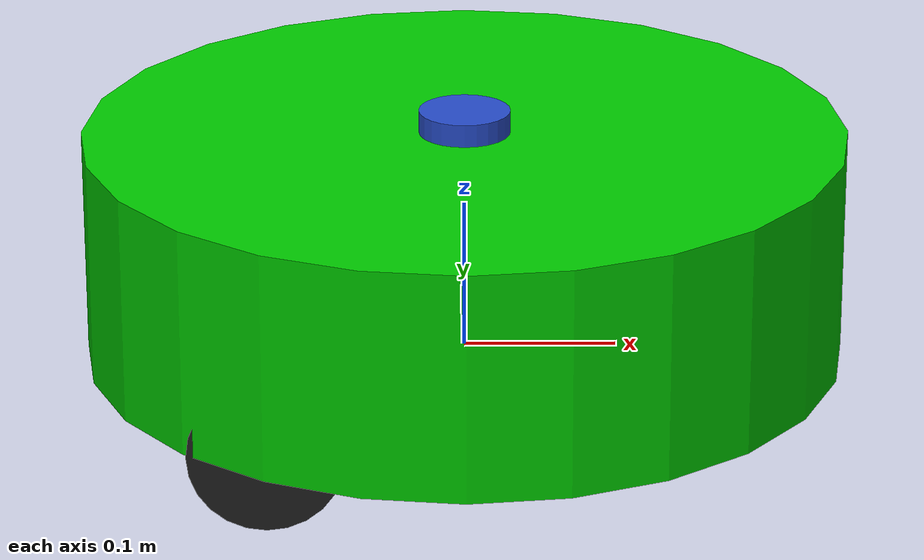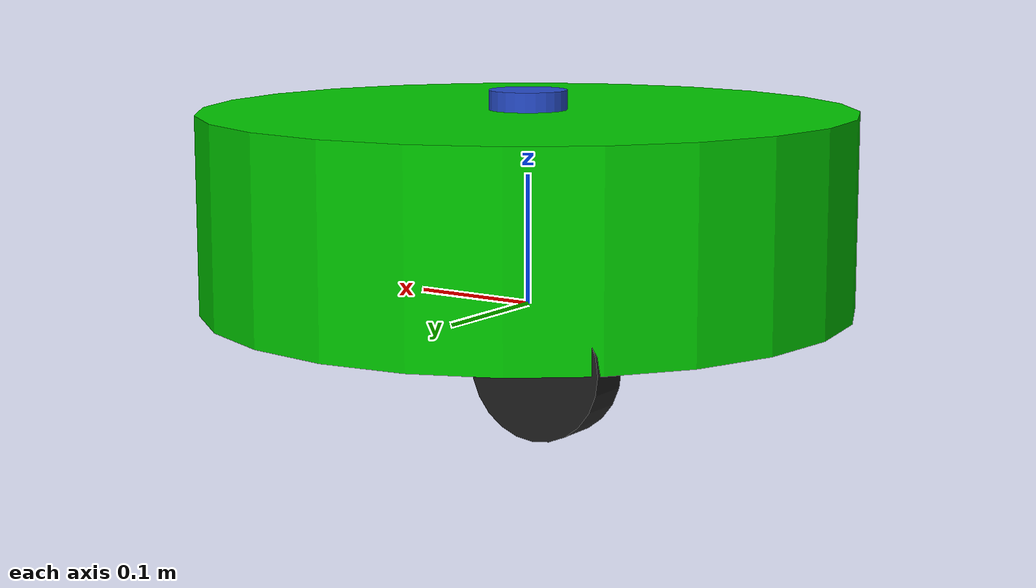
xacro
<?xml version="1.0"?>
<robot name="my_robot" xmlns:xacro="http://www.ros.org/wiki/xacro">
    <xacro:arg name="base_color_arg" default="Green"/>

    <xacro:include filename="$(find in424_desc)/xacro/materials.xacro"/>
    <xacro:include filename="$(find in424_desc)/xacro/robot.gazebo"/>
    <xacro:include filename="$(find in424_desc)/xacro/macro.xacro"/>

    <xacro:property name="base_radius" value="0.25"/>
    <xacro:property name="base_length" value="0.15"/>
    <xacro:property name="wheel_radius" value="0.05"/>
    <xacro:property name="wheel_length" value="0.03"/>
    <xacro:property name="front_wheel_radius" value="${wheel_radius/2+0.01}"/>
    <xacro:property name="lidar_radius" value="0.03"/>
    <xacro:property name="lidar_length" value="0.015"/>

    <!-- *****************BASE LINK************************* -->
    <link name="base_footprint"/>

    <link name="base_link">
        <visual>
            <origin xyz="0 0 ${base_length/2}"/>
            <geometry>
                <cylinder radius="${base_radius}" length="${base_length}"/>
            </geometry>
            <material name="$(arg base_color_arg)"/>
        </visual>
        <collision>
            <origin xyz="0 0 ${base_length/2}"/>
            <geometry>
                <cylinder radius="${base_radius}" length="${base_length}"/>
            </geometry>
        </collision>
        <xacro:cylinder_inertial mass="0.5" radius="${base_radius}" length="${base_length}" oz="${base_length/2}" roll="0" pitch="0" yaw="0"/>
    </link>
    <joint name="base_footprint_to_base_link" type="fixed">
        <parent link="base_footprint"/>
        <child link="base_link"/>
    </joint>

    <!-- *****************REAR WHEELS************************* -->
    <xacro:wheel prefix="left" reflect="1" />
    <xacro:wheel prefix="right" reflect="-1" />

    <!-- *****************FRONT WHEEL************************* -->
    <link name="front_wheel">
        <visual>
        <geometry>
            <sphere radius="${front_wheel_radius}"/>
        </geometry>
        <material name="black"/>
        </visual>
        <collision>
            <geometry>
                <sphere radius="${front_wheel_radius}"/>
            </geometry>
        </collision>
        <xacro:sphere_inertial mass="0.1" radius="${front_wheel_radius}"/>
    </link>
    <joint name="base_link_to_front_wheel" type="fixed">
        <parent link="base_link"/>
        <child link="front_wheel"/>
        <origin xyz="${base_radius-2*front_wheel_radius} 0 ${-front_wheel_radius/2}"/>
    </joint>

    <!-- *****************LIDAR************************* -->
    <link name="lidar_link">
      <visual>
        <geometry>
          <cylinder radius="${lidar_radius}" length="${lidar_length}"/>
        </geometry>
        <material name="blue"/>
      </visual>
    </link>
    <joint name="base_to_lidar" type="fixed">
      <parent link="base_link"/>
      <child link="lidar_link"/>
      <origin xyz="0 0 ${base_length + lidar_length/2}"/>
    </joint>
</robot>

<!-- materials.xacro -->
<robot>
    <material name="Black">
        <color rgba="0.0 0.0 0.0 1.0"/>
    </material>

    <material name="Blue">
        <color rgba="0.203125 0.23828125 0.28515625 1.0"/>
    </material>

    <material name="Green">
        <color rgba="0.0 0.8 0.0 1.0"/>
    </material>

    <material name="Grey">
        <color rgba="0.2 0.2 0.2 1.0"/>
    </material>

    <material name="Orange">
        <color rgba="1.0 0.423529411765 0.0392156862745 1.0"/>
    </material>

    <material name="Brown">
        <color rgba="0.870588235294 0.811764705882 0.764705882353 1.0"/>
    </material>

    <material name="Red">
        <color rgba="0.80078125 0.12890625 0.1328125 1.0"/>
    </material>

    <material name="White">
        <color rgba="1.0 1.0 1.0 1.0"/>
    </material>
</robot>

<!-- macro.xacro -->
<robot name="macro" xmlns:xacro="http://www.ros.org/wiki/xacro">
    <xacro:macro name="cylinder_inertial" params="mass radius length oz roll pitch yaw">
        <inertial>
        <origin xyz="0 0 ${oz}" rpy="${roll} ${pitch} ${yaw}"/>
        <mass value="${mass}"/>
        <inertia ixx="${mass*(3*radius*radius+length*length)/12}"
            iyy="${mass*(3*radius*radius+length*length)/12}"
            izz="${mass*radius*radius/2}"
            ixy="0" iyz="0" ixz="0"/>
        </inertial>
    </xacro:macro>

    <xacro:macro name="sphere_inertial" params="mass radius">
        <inertial>
        <mass value="${mass}"/>
        <inertia ixx="${mass*(2*radius*radius)/5}"
            iyy="${mass*(2*radius*radius)/5}"
            izz="${mass*(2*radius*radius)/5}"
            ixy="0" iyz="0" ixz="0"/>
        </inertial>
    </xacro:macro>

    <xacro:macro name="wheel" params="prefix reflect">
        <link name="${prefix}_wheel">
            <visual>
                <origin rpy="${pi/2} 0 0"/>
                <geometry>
                <cylinder radius="${wheel_radius}" length="${wheel_length}"/>
                </geometry>
                <material name="black"/>
            </visual>
            <collision>
                <origin rpy="${pi/2} 0 0"/>
                <geometry>
                <cylinder radius="${wheel_radius}" length="${wheel_length}"/>
                </geometry>
            </collision>
            <xacro:cylinder_inertial mass="0.05" radius="${wheel_radius}" length="${wheel_length}" oz="0" roll="${pi/2}" pitch="0" yaw="0"/>
        </link>
        <joint name="base_to_${prefix}_wheel" type="fixed">
            <parent link="base_link"/>
            <child link="${prefix}_wheel"/>
            <origin xyz="${-base_radius/2} ${reflect*(2*base_radius/3)} 0"/>
        </joint>
    </xacro:macro>
</robot>
